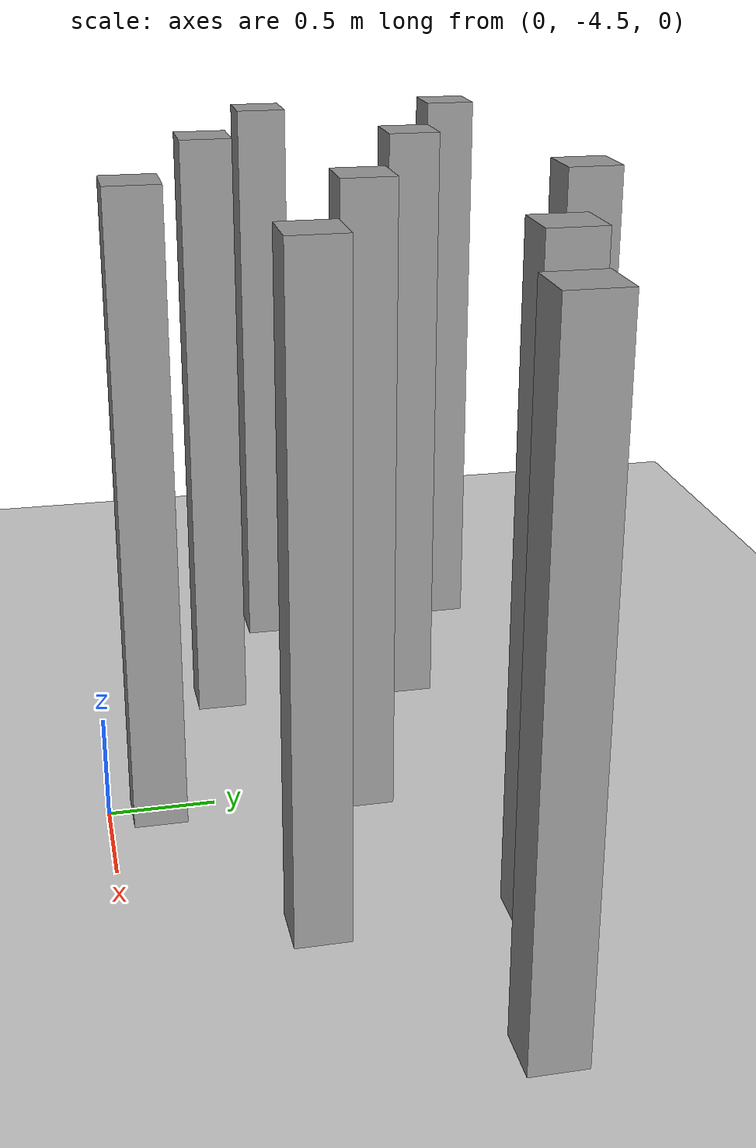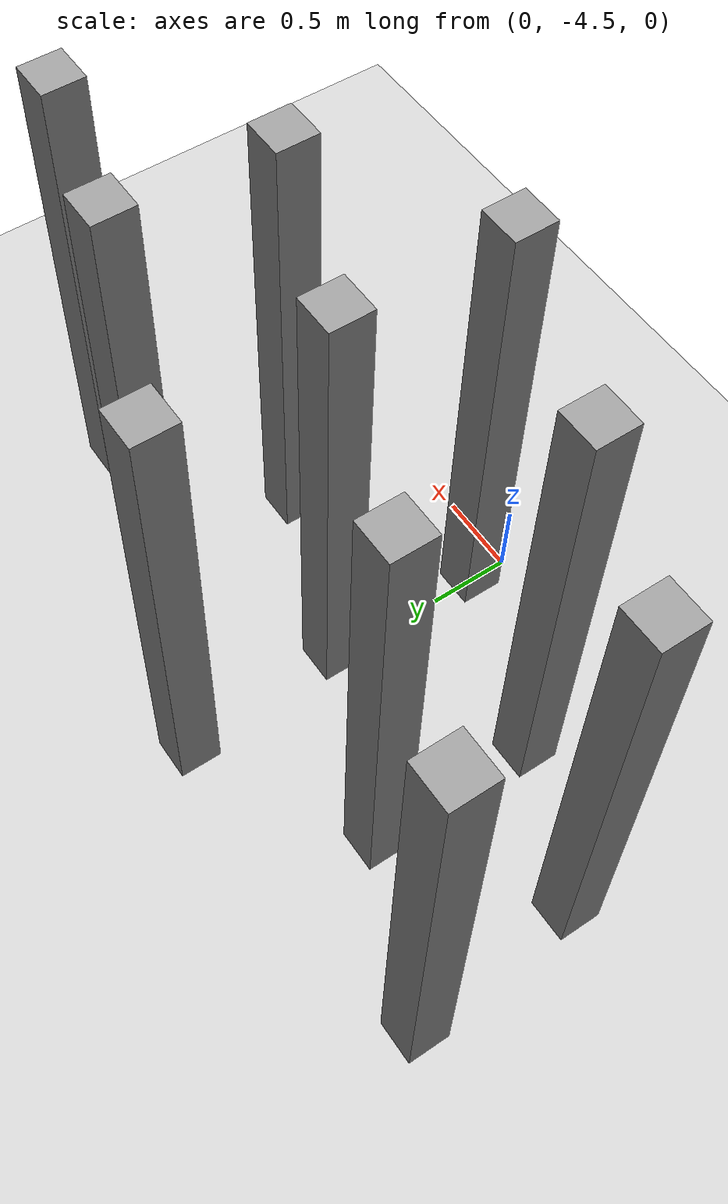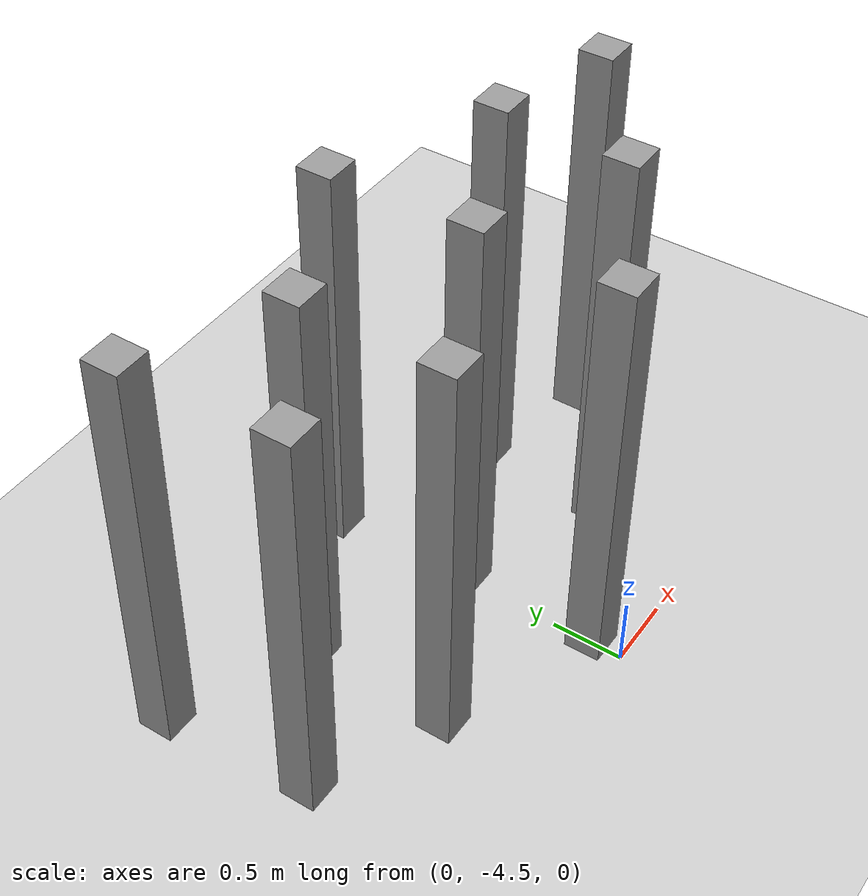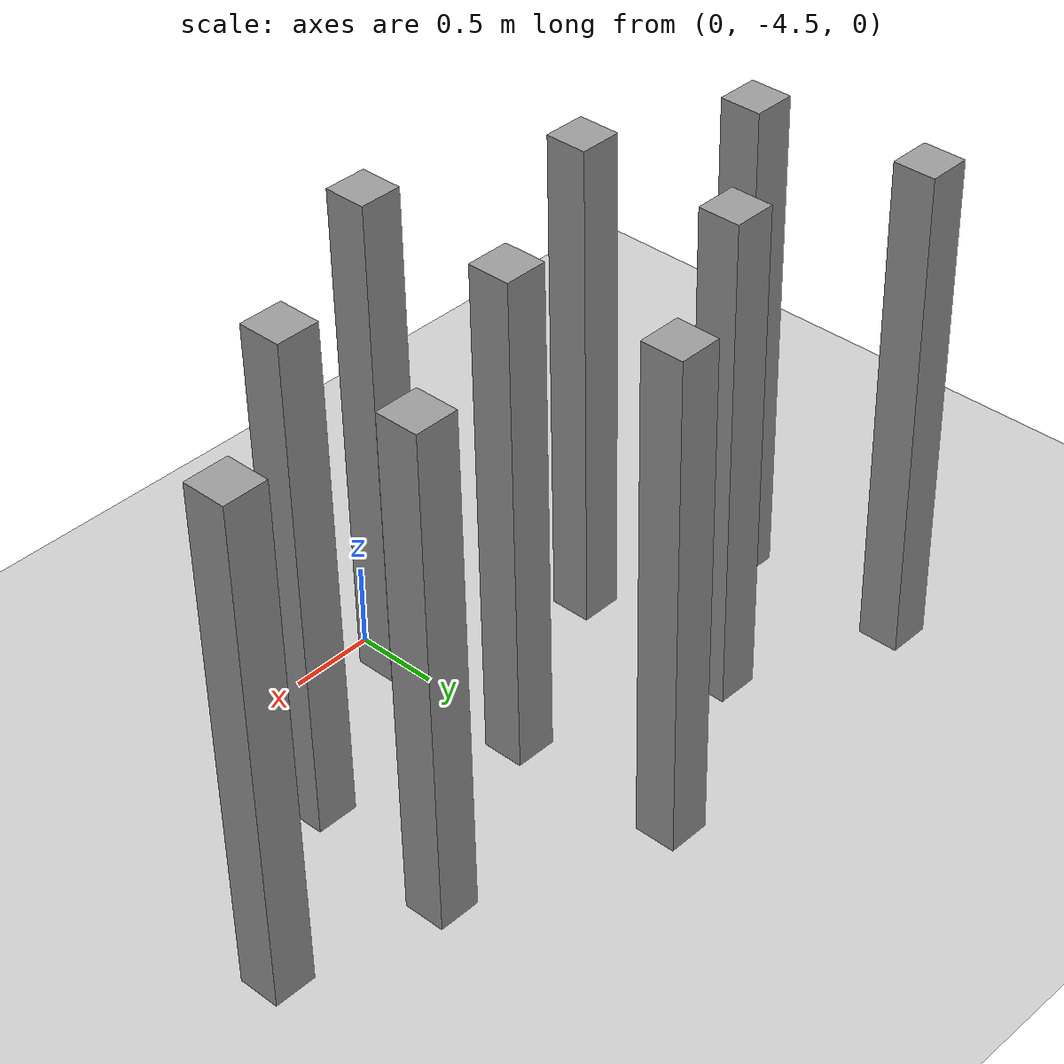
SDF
<sdf version="1.6">
 <world name="default">
  <model name="ground_plane">
   <static>1</static>
   <link name="link">
    <collision name="collision">
     <geometry><plane><normal>0 0 1</normal><size>100 100</size></plane></geometry>
     <surface><friction><ode><mu>100</mu><mu2>50</mu2></ode></friction></surface>
    </collision>
    <visual name="visual">
     <cast_shadows>0</cast_shadows>
     <geometry><plane><normal>0 0 1</normal><size>100 100</size></plane></geometry>
     <material>
      <script><uri>file://media/materials/scripts/gazebo.material</uri><name>Gazebo/Grey</name></script>
     </material>
    </visual>
   </link>
  </model>
  <model name="box_2_1">
   <link name="link">
    <pose>0 0 1 0 -0 0</pose>
    <inertial>
     <mass>1</mass>
     <inertia><ixx>5.16667</ixx><ixy>0</ixy><ixz>0</ixz><iyy>5.16667</iyy><iyz>0</iyz><izz>5.16667</izz></inertia>
     <pose>0 0 1 0 -0 0</pose>
    </inertial>
    <visual name="ModelPreview_4::link::visual_1">
     <geometry><box><size>0.25 0.25 3</size></box></geometry>
     <material>
      <script><name>Gazebo/Grey</name><uri>file://media/materials/scripts/gazebo.material</uri></script>
      <ambient>0.3 0.3 0.3 1</ambient>
      <diffuse>0.7 0.7 0.7 1</diffuse>
      <specular>0.01 0.01 0.01 1</specular>
      <emissive>0 0 0 1</emissive>
      <shader type="vertex"><normal_map>__default__</normal_map></shader>
     </material>
    </visual>
    <visual name="visual">
     <geometry><box><size>0.25 0.25 3</size></box></geometry>
     <material>
      <script><name>Gazebo/Grey</name><uri>file://media/materials/scripts/gazebo.material</uri></script>
      <ambient>0.3 0.3 0.3 1</ambient>
      <diffuse>0.7 0.7 0.7 1</diffuse>
      <specular>0.01 0.01 0.01 1</specular>
      <emissive>0 0 0 1</emissive>
      <shader type="vertex"><normal_map>__default__</normal_map></shader>
     </material>
    </visual>
    <collision name="collision">
     <geometry><box><size>0.25 0.25 3</size></box></geometry>
     <surface>
      <friction>
       <ode><mu>1</mu><mu2>1</mu2><fdir1>0 0 0</fdir1><slip1>0</slip1><slip2>0</slip2></ode>
       <torsional>
        <coefficient>1</coefficient>
        <patch_radius>0</patch_radius>
        <surface_radius>0</surface_radius>
        <use_patch_radius>1</use_patch_radius>
        <ode><slip>0</slip></ode>
       </torsional>
      </friction>
      <bounce><restitution_coefficient>0</restitution_coefficient><threshold>1e+06</threshold></bounce>
      <contact>
       <collide_without_contact>0</collide_without_contact>
       <collide_without_contact_bitmask>1</collide_without_contact_bitmask>
       <collide_bitmask>1</collide_bitmask>
       <ode>
        <soft_cfm>0</soft_cfm>
        <soft_erp>0.2</soft_erp>
        <kp>1e+13</kp>
        <kd>1</kd>
        <max_vel>0.01</max_vel>
        <min_depth>0</min_depth>
       </ode>
       <bullet>
        <split_impulse>1</split_impulse>
        <split_impulse_penetration_threshold>-0.01</split_impulse_penetration_threshold>
        <soft_cfm>0</soft_cfm>
        <soft_erp>0.2</soft_erp>
        <kp>1e+13</kp>
        <kd>1</kd>
       </bullet>
      </contact>
     </surface>
    </collision>
   </link>
   <static>0</static>
   <pose>-0.019064 -2.27137 0.500001 -4e-06 -2e-06 -0.000161</pose>
  </model>
  <model name="box_2_2">
   <link name="link">
    <pose>0 0 1 0 -0 0</pose>
    <inertial>
     <mass>1</mass>
     <inertia><ixx>5.16667</ixx><ixy>0</ixy><ixz>0</ixz><iyy>5.16667</iyy><iyz>0</iyz><izz>5.16667</izz></inertia>
     <pose>0 0 1 0 -0 0</pose>
    </inertial>
    <visual name="ModelPreview_4::link::visual_1">
     <geometry><box><size>0.25 0.25 3</size></box></geometry>
     <material>
      <script><name>Gazebo/Grey</name><uri>file://media/materials/scripts/gazebo.material</uri></script>
      <ambient>0.3 0.3 0.3 1</ambient>
      <diffuse>0.7 0.7 0.7 1</diffuse>
      <specular>0.01 0.01 0.01 1</specular>
      <emissive>0 0 0 1</emissive>
      <shader type="vertex"><normal_map>__default__</normal_map></shader>
     </material>
    </visual>
    <visual name="visual">
     <geometry><box><size>0.25 0.25 3</size></box></geometry>
     <material>
      <script><name>Gazebo/Grey</name><uri>file://media/materials/scripts/gazebo.material</uri></script>
      <ambient>0.3 0.3 0.3 1</ambient>
      <diffuse>0.7 0.7 0.7 1</diffuse>
      <specular>0.01 0.01 0.01 1</specular>
      <emissive>0 0 0 1</emissive>
      <shader type="vertex"><normal_map>__default__</normal_map></shader>
     </material>
    </visual>
    <collision name="collision">
     <geometry><box><size>0.25 0.25 3</size></box></geometry>
     <surface>
      <friction>
       <ode><mu>1</mu><mu2>1</mu2><fdir1>0 0 0</fdir1><slip1>0</slip1><slip2>0</slip2></ode>
       <torsional>
        <coefficient>1</coefficient>
        <patch_radius>0</patch_radius>
        <surface_radius>0</surface_radius>
        <use_patch_radius>1</use_patch_radius>
        <ode><slip>0</slip></ode>
       </torsional>
      </friction>
      <bounce><restitution_coefficient>0</restitution_coefficient><threshold>1e+06</threshold></bounce>
      <contact>
       <collide_without_contact>0</collide_without_contact>
       <collide_without_contact_bitmask>1</collide_without_contact_bitmask>
       <collide_bitmask>1</collide_bitmask>
       <ode>
        <soft_cfm>0</soft_cfm>
        <soft_erp>0.2</soft_erp>
        <kp>1e+13</kp>
        <kd>1</kd>
        <max_vel>0.01</max_vel>
        <min_depth>0</min_depth>
       </ode>
       <bullet>
        <split_impulse>1</split_impulse>
        <split_impulse_penetration_threshold>-0.01</split_impulse_penetration_threshold>
        <soft_cfm>0</soft_cfm>
        <soft_erp>0.2</soft_erp>
        <kp>1e+13</kp>
        <kd>1</kd>
       </bullet>
      </contact>
     </surface>
    </collision>
   </link>
   <static>0</static>
   <pose>0.041525 -3.28341 0.5 0 -1e-06 -0.000116</pose>
  </model>
  <model name="box_2_3">
   <link name="link">
    <pose>0 0 1 0 -0 0</pose>
    <inertial>
     <mass>1</mass>
     <inertia><ixx>5.16667</ixx><ixy>0</ixy><ixz>0</ixz><iyy>5.16667</iyy><iyz>0</iyz><izz>5.16667</izz></inertia>
     <pose>0 0 1 0 -0 0</pose>
    </inertial>
    <visual name="ModelPreview_4::link::visual_1">
     <geometry><box><size>0.25 0.25 3</size></box></geometry>
     <material>
      <script><name>Gazebo/Grey</name><uri>file://media/materials/scripts/gazebo.material</uri></script>
      <ambient>0.3 0.3 0.3 1</ambient>
      <diffuse>0.7 0.7 0.7 1</diffuse>
      <specular>0.01 0.01 0.01 1</specular>
      <emissive>0 0 0 1</emissive>
      <shader type="vertex"><normal_map>__default__</normal_map></shader>
     </material>
    </visual>
    <visual name="visual">
     <geometry><box><size>0.25 0.25 3</size></box></geometry>
     <material>
      <script><name>Gazebo/Grey</name><uri>file://media/materials/scripts/gazebo.material</uri></script>
      <ambient>0.3 0.3 0.3 1</ambient>
      <diffuse>0.7 0.7 0.7 1</diffuse>
      <specular>0.01 0.01 0.01 1</specular>
      <emissive>0 0 0 1</emissive>
      <shader type="vertex"><normal_map>__default__</normal_map></shader>
     </material>
    </visual>
    <collision name="collision">
     <geometry><box><size>0.25 0.25 3</size></box></geometry>
     <surface>
      <friction>
       <ode><mu>1</mu><mu2>1</mu2><fdir1>0 0 0</fdir1><slip1>0</slip1><slip2>0</slip2></ode>
       <torsional>
        <coefficient>1</coefficient>
        <patch_radius>0</patch_radius>
        <surface_radius>0</surface_radius>
        <use_patch_radius>1</use_patch_radius>
        <ode><slip>0</slip></ode>
       </torsional>
      </friction>
      <bounce><restitution_coefficient>0</restitution_coefficient><threshold>1e+06</threshold></bounce>
      <contact>
       <collide_without_contact>0</collide_without_contact>
       <collide_without_contact_bitmask>1</collide_without_contact_bitmask>
       <collide_bitmask>1</collide_bitmask>
       <ode>
        <soft_cfm>0</soft_cfm>
        <soft_erp>0.2</soft_erp>
        <kp>1e+13</kp>
        <kd>1</kd>
        <max_vel>0.01</max_vel>
        <min_depth>0</min_depth>
       </ode>
       <bullet>
        <split_impulse>1</split_impulse>
        <split_impulse_penetration_threshold>-0.01</split_impulse_penetration_threshold>
        <soft_cfm>0</soft_cfm>
        <soft_erp>0.2</soft_erp>
        <kp>1e+13</kp>
        <kd>1</kd>
       </bullet>
      </contact>
     </surface>
    </collision>
   </link>
   <static>0</static>
   <pose>0.019903 -4.26621 0.5 -2e-06 -0 -8.3e-05</pose>
  </model>
  <model name="box_2_12">
   <link name="link">
    <pose>0 0 1 0 -0 0</pose>
    <inertial>
     <mass>1</mass>
     <inertia><ixx>5.16667</ixx><ixy>0</ixy><ixz>0</ixz><iyy>5.16667</iyy><iyz>0</iyz><izz>5.16667</izz></inertia>
     <pose>0 0 1 0 -0 0</pose>
    </inertial>
    <visual name="ModelPreview_4::link::visual_1">
     <geometry><box><size>0.25 0.25 3</size></box></geometry>
     <material>
      <script><name>Gazebo/Grey</name><uri>file://media/materials/scripts/gazebo.material</uri></script>
      <ambient>0.3 0.3 0.3 1</ambient>
      <diffuse>0.7 0.7 0.7 1</diffuse>
      <specular>0.01 0.01 0.01 1</specular>
      <emissive>0 0 0 1</emissive>
      <shader type="vertex"><normal_map>__default__</normal_map></shader>
     </material>
    </visual>
    <visual name="visual">
     <geometry><box><size>0.25 0.25 3</size></box></geometry>
     <material>
      <script><name>Gazebo/Grey</name><uri>file://media/materials/scripts/gazebo.material</uri></script>
      <ambient>0.3 0.3 0.3 1</ambient>
      <diffuse>0.7 0.7 0.7 1</diffuse>
      <specular>0.01 0.01 0.01 1</specular>
      <emissive>0 0 0 1</emissive>
      <shader type="vertex"><normal_map>__default__</normal_map></shader>
     </material>
    </visual>
    <collision name="collision">
     <geometry><box><size>0.25 0.25 3</size></box></geometry>
     <surface>
      <friction>
       <ode><mu>1</mu><mu2>1</mu2><fdir1>0 0 0</fdir1><slip1>0</slip1><slip2>0</slip2></ode>
       <torsional>
        <coefficient>1</coefficient>
        <patch_radius>0</patch_radius>
        <surface_radius>0</surface_radius>
        <use_patch_radius>1</use_patch_radius>
        <ode><slip>0</slip></ode>
       </torsional>
      </friction>
      <bounce><restitution_coefficient>0</restitution_coefficient><threshold>1e+06</threshold></bounce>
      <contact>
       <collide_without_contact>0</collide_without_contact>
       <collide_without_contact_bitmask>1</collide_without_contact_bitmask>
       <collide_bitmask>1</collide_bitmask>
       <ode>
        <soft_cfm>0</soft_cfm>
        <soft_erp>0.2</soft_erp>
        <kp>1e+13</kp>
        <kd>1</kd>
        <max_vel>0.01</max_vel>
        <min_depth>0</min_depth>
       </ode>
       <bullet>
        <split_impulse>1</split_impulse>
        <split_impulse_penetration_threshold>-0.01</split_impulse_penetration_threshold>
        <soft_cfm>0</soft_cfm>
        <soft_erp>0.2</soft_erp>
        <kp>1e+13</kp>
        <kd>1</kd>
       </bullet>
      </contact>
     </surface>
    </collision>
   </link>
   <static>0</static>
   <pose>1.08723 -3.69589 0.5 0 0 -8.7e-05</pose>
  </model>
  <model name="box_2_13">
   <link name="link">
    <pose>0 0 1 0 -0 0</pose>
    <inertial>
     <mass>1</mass>
     <inertia><ixx>5.16667</ixx><ixy>0</ixy><ixz>0</ixz><iyy>5.16667</iyy><iyz>0</iyz><izz>5.16667</izz></inertia>
     <pose>0 0 1 0 -0 0</pose>
    </inertial>
    <visual name="ModelPreview_4::link::visual_1">
     <geometry><box><size>0.25 0.25 3</size></box></geometry>
     <material>
      <script><name>Gazebo/Grey</name><uri>file://media/materials/scripts/gazebo.material</uri></script>
      <ambient>0.3 0.3 0.3 1</ambient>
      <diffuse>0.7 0.7 0.7 1</diffuse>
      <specular>0.01 0.01 0.01 1</specular>
      <emissive>0 0 0 1</emissive>
      <shader type="vertex"><normal_map>__default__</normal_map></shader>
     </material>
    </visual>
    <visual name="visual">
     <geometry><box><size>0.25 0.25 3</size></box></geometry>
     <material>
      <script><name>Gazebo/Grey</name><uri>file://media/materials/scripts/gazebo.material</uri></script>
      <ambient>0.3 0.3 0.3 1</ambient>
      <diffuse>0.7 0.7 0.7 1</diffuse>
      <specular>0.01 0.01 0.01 1</specular>
      <emissive>0 0 0 1</emissive>
      <shader type="vertex"><normal_map>__default__</normal_map></shader>
     </material>
    </visual>
    <collision name="collision">
     <geometry><box><size>0.25 0.25 3</size></box></geometry>
     <surface>
      <friction>
       <ode><mu>1</mu><mu2>1</mu2><fdir1>0 0 0</fdir1><slip1>0</slip1><slip2>0</slip2></ode>
       <torsional>
        <coefficient>1</coefficient>
        <patch_radius>0</patch_radius>
        <surface_radius>0</surface_radius>
        <use_patch_radius>1</use_patch_radius>
        <ode><slip>0</slip></ode>
       </torsional>
      </friction>
      <bounce><restitution_coefficient>0</restitution_coefficient><threshold>1e+06</threshold></bounce>
      <contact>
       <collide_without_contact>0</collide_without_contact>
       <collide_without_contact_bitmask>1</collide_without_contact_bitmask>
       <collide_bitmask>1</collide_bitmask>
       <ode>
        <soft_cfm>0</soft_cfm>
        <soft_erp>0.2</soft_erp>
        <kp>1e+13</kp>
        <kd>1</kd>
        <max_vel>0.01</max_vel>
        <min_depth>0</min_depth>
       </ode>
       <bullet>
        <split_impulse>1</split_impulse>
        <split_impulse_penetration_threshold>-0.01</split_impulse_penetration_threshold>
        <soft_cfm>0</soft_cfm>
        <soft_erp>0.2</soft_erp>
        <kp>1e+13</kp>
        <kd>1</kd>
       </bullet>
      </contact>
     </surface>
    </collision>
   </link>
   <static>0</static>
   <pose>1.15505 -2.75172 0.500002 -1.5e-05 0 -0.000181</pose>
  </model>
  <model name="box_2_26">
   <link name="link">
    <pose>0 0 1 0 -0 0</pose>
    <inertial>
     <mass>1</mass>
     <inertia><ixx>5.16667</ixx><ixy>0</ixy><ixz>0</ixz><iyy>5.16667</iyy><iyz>0</iyz><izz>5.16667</izz></inertia>
     <pose>0 0 1 0 -0 0</pose>
    </inertial>
    <visual name="ModelPreview_4::link::visual_1">
     <geometry><box><size>0.25 0.25 3</size></box></geometry>
     <material>
      <script><name>Gazebo/Grey</name><uri>file://media/materials/scripts/gazebo.material</uri></script>
      <ambient>0.3 0.3 0.3 1</ambient>
      <diffuse>0.7 0.7 0.7 1</diffuse>
      <specular>0.01 0.01 0.01 1</specular>
      <emissive>0 0 0 1</emissive>
      <shader type="vertex"><normal_map>__default__</normal_map></shader>
     </material>
    </visual>
    <visual name="visual">
     <geometry><box><size>0.25 0.25 3</size></box></geometry>
     <material>
      <script><name>Gazebo/Grey</name><uri>file://media/materials/scripts/gazebo.material</uri></script>
      <ambient>0.3 0.3 0.3 1</ambient>
      <diffuse>0.7 0.7 0.7 1</diffuse>
      <specular>0.01 0.01 0.01 1</specular>
      <emissive>0 0 0 1</emissive>
      <shader type="vertex"><normal_map>__default__</normal_map></shader>
     </material>
    </visual>
    <collision name="collision">
     <geometry><box><size>0.25 0.25 3</size></box></geometry>
     <surface>
      <friction>
       <ode><mu>1</mu><mu2>1</mu2><fdir1>0 0 0</fdir1><slip1>0</slip1><slip2>0</slip2></ode>
       <torsional>
        <coefficient>1</coefficient>
        <patch_radius>0</patch_radius>
        <surface_radius>0</surface_radius>
        <use_patch_radius>1</use_patch_radius>
        <ode><slip>0</slip></ode>
       </torsional>
      </friction>
      <bounce><restitution_coefficient>0</restitution_coefficient><threshold>1e+06</threshold></bounce>
      <contact>
       <collide_without_contact>0</collide_without_contact>
       <collide_without_contact_bitmask>1</collide_without_contact_bitmask>
       <collide_bitmask>1</collide_bitmask>
       <ode>
        <soft_cfm>0</soft_cfm>
        <soft_erp>0.2</soft_erp>
        <kp>1e+13</kp>
        <kd>1</kd>
        <max_vel>0.01</max_vel>
        <min_depth>0</min_depth>
       </ode>
       <bullet>
        <split_impulse>1</split_impulse>
        <split_impulse_penetration_threshold>-0.01</split_impulse_penetration_threshold>
        <soft_cfm>0</soft_cfm>
        <soft_erp>0.2</soft_erp>
        <kp>1e+13</kp>
        <kd>1</kd>
       </bullet>
      </contact>
     </surface>
    </collision>
   </link>
   <static>0</static>
   <pose>-1.05883 -2.82292 0.5 0 0 -0.000137</pose>
  </model>
  <model name="box_2_27">
   <link name="link">
    <pose>0 0 1 0 -0 0</pose>
    <inertial>
     <mass>1</mass>
     <inertia><ixx>5.16667</ixx><ixy>0</ixy><ixz>0</ixz><iyy>5.16667</iyy><iyz>0</iyz><izz>5.16667</izz></inertia>
     <pose>0 0 1 0 -0 0</pose>
    </inertial>
    <visual name="ModelPreview_4::link::visual_1">
     <geometry><box><size>0.25 0.25 3</size></box></geometry>
     <material>
      <script><name>Gazebo/Grey</name><uri>file://media/materials/scripts/gazebo.material</uri></script>
      <ambient>0.3 0.3 0.3 1</ambient>
      <diffuse>0.7 0.7 0.7 1</diffuse>
      <specular>0.01 0.01 0.01 1</specular>
      <emissive>0 0 0 1</emissive>
      <shader type="vertex"><normal_map>__default__</normal_map></shader>
     </material>
    </visual>
    <visual name="visual">
     <geometry><box><size>0.25 0.25 3</size></box></geometry>
     <material>
      <script><name>Gazebo/Grey</name><uri>file://media/materials/scripts/gazebo.material</uri></script>
      <ambient>0.3 0.3 0.3 1</ambient>
      <diffuse>0.7 0.7 0.7 1</diffuse>
      <specular>0.01 0.01 0.01 1</specular>
      <emissive>0 0 0 1</emissive>
      <shader type="vertex"><normal_map>__default__</normal_map></shader>
     </material>
    </visual>
    <collision name="collision">
     <geometry><box><size>0.25 0.25 3</size></box></geometry>
     <surface>
      <friction>
       <ode><mu>1</mu><mu2>1</mu2><fdir1>0 0 0</fdir1><slip1>0</slip1><slip2>0</slip2></ode>
       <torsional>
        <coefficient>1</coefficient>
        <patch_radius>0</patch_radius>
        <surface_radius>0</surface_radius>
        <use_patch_radius>1</use_patch_radius>
        <ode><slip>0</slip></ode>
       </torsional>
      </friction>
      <bounce><restitution_coefficient>0</restitution_coefficient><threshold>1e+06</threshold></bounce>
      <contact>
       <collide_without_contact>0</collide_without_contact>
       <collide_without_contact_bitmask>1</collide_without_contact_bitmask>
       <collide_bitmask>1</collide_bitmask>
       <ode>
        <soft_cfm>0</soft_cfm>
        <soft_erp>0.2</soft_erp>
        <kp>1e+13</kp>
        <kd>1</kd>
        <max_vel>0.01</max_vel>
        <min_depth>0</min_depth>
       </ode>
       <bullet>
        <split_impulse>1</split_impulse>
        <split_impulse_penetration_threshold>-0.01</split_impulse_penetration_threshold>
        <soft_cfm>0</soft_cfm>
        <soft_erp>0.2</soft_erp>
        <kp>1e+13</kp>
        <kd>1</kd>
       </bullet>
      </contact>
     </surface>
    </collision>
   </link>
   <static>0</static>
   <pose>-1.07414 -3.83131 0.5 -3e-06 -0 -0.0002</pose>
  </model>
  <model name="box_2_33">
   <link name="link">
    <pose>0 0 1 0 -0 0</pose>
    <inertial>
     <mass>1</mass>
     <inertia><ixx>5.16667</ixx><ixy>0</ixy><ixz>0</ixz><iyy>5.16667</iyy><iyz>0</iyz><izz>5.16667</izz></inertia>
     <pose>0 0 1 0 -0 0</pose>
    </inertial>
    <visual name="ModelPreview_4::link::visual_1">
     <geometry><box><size>0.25 0.25 3</size></box></geometry>
     <material>
      <script><name>Gazebo/Grey</name><uri>file://media/materials/scripts/gazebo.material</uri></script>
      <ambient>0.3 0.3 0.3 1</ambient>
      <diffuse>0.7 0.7 0.7 1</diffuse>
      <specular>0.01 0.01 0.01 1</specular>
      <emissive>0 0 0 1</emissive>
      <shader type="vertex"><normal_map>__default__</normal_map></shader>
     </material>
    </visual>
    <visual name="visual">
     <geometry><box><size>0.25 0.25 3</size></box></geometry>
     <material>
      <script><name>Gazebo/Grey</name><uri>file://media/materials/scripts/gazebo.material</uri></script>
      <ambient>0.3 0.3 0.3 1</ambient>
      <diffuse>0.7 0.7 0.7 1</diffuse>
      <specular>0.01 0.01 0.01 1</specular>
      <emissive>0 0 0 1</emissive>
      <shader type="vertex"><normal_map>__default__</normal_map></shader>
     </material>
    </visual>
    <collision name="collision">
     <geometry><box><size>0.25 0.25 3</size></box></geometry>
     <surface>
      <friction>
       <ode><mu>1</mu><mu2>1</mu2><fdir1>0 0 0</fdir1><slip1>0</slip1><slip2>0</slip2></ode>
       <torsional>
        <coefficient>1</coefficient>
        <patch_radius>0</patch_radius>
        <surface_radius>0</surface_radius>
        <use_patch_radius>1</use_patch_radius>
        <ode><slip>0</slip></ode>
       </torsional>
      </friction>
      <bounce><restitution_coefficient>0</restitution_coefficient><threshold>1e+06</threshold></bounce>
      <contact>
       <collide_without_contact>0</collide_without_contact>
       <collide_without_contact_bitmask>1</collide_without_contact_bitmask>
       <collide_bitmask>1</collide_bitmask>
       <ode>
        <soft_cfm>0</soft_cfm>
        <soft_erp>0.2</soft_erp>
        <kp>1e+13</kp>
        <kd>1</kd>
        <max_vel>0.01</max_vel>
        <min_depth>0</min_depth>
       </ode>
       <bullet>
        <split_impulse>1</split_impulse>
        <split_impulse_penetration_threshold>-0.01</split_impulse_penetration_threshold>
        <soft_cfm>0</soft_cfm>
        <soft_erp>0.2</soft_erp>
        <kp>1e+13</kp>
        <kd>1</kd>
       </bullet>
      </contact>
     </surface>
    </collision>
   </link>
   <static>0</static>
   <pose>-2.02342 -2.39234 0.500001 -1e-06 6e-06 -0.000157</pose>
  </model>
  <model name="box_2_34">
   <link name="link">
    <pose>0 0 1 0 -0 0</pose>
    <inertial>
     <mass>1</mass>
     <inertia><ixx>5.16667</ixx><ixy>0</ixy><ixz>0</ixz><iyy>5.16667</iyy><iyz>0</iyz><izz>5.16667</izz></inertia>
     <pose>0 0 1 0 -0 0</pose>
    </inertial>
    <visual name="ModelPreview_4::link::visual_1">
     <geometry><box><size>0.25 0.25 3</size></box></geometry>
     <material>
      <script><name>Gazebo/Grey</name><uri>file://media/materials/scripts/gazebo.material</uri></script>
      <ambient>0.3 0.3 0.3 1</ambient>
      <diffuse>0.7 0.7 0.7 1</diffuse>
      <specular>0.01 0.01 0.01 1</specular>
      <emissive>0 0 0 1</emissive>
      <shader type="vertex"><normal_map>__default__</normal_map></shader>
     </material>
    </visual>
    <visual name="visual">
     <geometry><box><size>0.25 0.25 3</size></box></geometry>
     <material>
      <script><name>Gazebo/Grey</name><uri>file://media/materials/scripts/gazebo.material</uri></script>
      <ambient>0.3 0.3 0.3 1</ambient>
      <diffuse>0.7 0.7 0.7 1</diffuse>
      <specular>0.01 0.01 0.01 1</specular>
      <emissive>0 0 0 1</emissive>
      <shader type="vertex"><normal_map>__default__</normal_map></shader>
     </material>
    </visual>
    <collision name="collision">
     <geometry><box><size>0.25 0.25 3</size></box></geometry>
     <surface>
      <friction>
       <ode><mu>1</mu><mu2>1</mu2><fdir1>0 0 0</fdir1><slip1>0</slip1><slip2>0</slip2></ode>
       <torsional>
        <coefficient>1</coefficient>
        <patch_radius>0</patch_radius>
        <surface_radius>0</surface_radius>
        <use_patch_radius>1</use_patch_radius>
        <ode><slip>0</slip></ode>
       </torsional>
      </friction>
      <bounce><restitution_coefficient>0</restitution_coefficient><threshold>1e+06</threshold></bounce>
      <contact>
       <collide_without_contact>0</collide_without_contact>
       <collide_without_contact_bitmask>1</collide_without_contact_bitmask>
       <collide_bitmask>1</collide_bitmask>
       <ode>
        <soft_cfm>0</soft_cfm>
        <soft_erp>0.2</soft_erp>
        <kp>1e+13</kp>
        <kd>1</kd>
        <max_vel>0.01</max_vel>
        <min_depth>0</min_depth>
       </ode>
       <bullet>
        <split_impulse>1</split_impulse>
        <split_impulse_penetration_threshold>-0.01</split_impulse_penetration_threshold>
        <soft_cfm>0</soft_cfm>
        <soft_erp>0.2</soft_erp>
        <kp>1e+13</kp>
        <kd>1</kd>
       </bullet>
      </contact>
     </surface>
    </collision>
   </link>
   <static>0</static>
   <pose>-1.94416 -3.43269 0.500002 2e-06 1.3e-05 -0.00012</pose>
  </model>
  <model name="box_2_35">
   <link name="link">
    <pose>0 0 1 0 -0 0</pose>
    <inertial>
     <mass>1</mass>
     <inertia><ixx>5.16667</ixx><ixy>0</ixy><ixz>0</ixz><iyy>5.16667</iyy><iyz>0</iyz><izz>5.16667</izz></inertia>
     <pose>0 0 1 0 -0 0</pose>
    </inertial>
    <visual name="ModelPreview_4::link::visual_1">
     <geometry><box><size>0.25 0.25 3</size></box></geometry>
     <material>
      <script><name>Gazebo/Grey</name><uri>file://media/materials/scripts/gazebo.material</uri></script>
      <ambient>0.3 0.3 0.3 1</ambient>
      <diffuse>0.7 0.7 0.7 1</diffuse>
      <specular>0.01 0.01 0.01 1</specular>
      <emissive>0 0 0 1</emissive>
      <shader type="vertex"><normal_map>__default__</normal_map></shader>
     </material>
    </visual>
    <visual name="visual">
     <geometry><box><size>0.25 0.25 3</size></box></geometry>
     <material>
      <script><name>Gazebo/Grey</name><uri>file://media/materials/scripts/gazebo.material</uri></script>
      <ambient>0.3 0.3 0.3 1</ambient>
      <diffuse>0.7 0.7 0.7 1</diffuse>
      <specular>0.01 0.01 0.01 1</specular>
      <emissive>0 0 0 1</emissive>
      <shader type="vertex"><normal_map>__default__</normal_map></shader>
     </material>
    </visual>
    <collision name="collision">
     <geometry><box><size>0.25 0.25 3</size></box></geometry>
     <surface>
      <friction>
       <ode><mu>1</mu><mu2>1</mu2><fdir1>0 0 0</fdir1><slip1>0</slip1><slip2>0</slip2></ode>
       <torsional>
        <coefficient>1</coefficient>
        <patch_radius>0</patch_radius>
        <surface_radius>0</surface_radius>
        <use_patch_radius>1</use_patch_radius>
        <ode><slip>0</slip></ode>
       </torsional>
      </friction>
      <bounce><restitution_coefficient>0</restitution_coefficient><threshold>1e+06</threshold></bounce>
      <contact>
       <collide_without_contact>0</collide_without_contact>
       <collide_without_contact_bitmask>1</collide_without_contact_bitmask>
       <collide_bitmask>1</collide_bitmask>
       <ode>
        <soft_cfm>0</soft_cfm>
        <soft_erp>0.2</soft_erp>
        <kp>1e+13</kp>
        <kd>1</kd>
        <max_vel>0.01</max_vel>
        <min_depth>0</min_depth>
       </ode>
       <bullet>
        <split_impulse>1</split_impulse>
        <split_impulse_penetration_threshold>-0.01</split_impulse_penetration_threshold>
        <soft_cfm>0</soft_cfm>
        <soft_erp>0.2</soft_erp>
        <kp>1e+13</kp>
        <kd>1</kd>
       </bullet>
      </contact>
     </surface>
    </collision>
   </link>
   <static>0</static>
   <pose>2.04008 -2.98284 0.500004 2e-06 2.7e-05 -0.000169</pose>
  </model>
 </world>
</sdf>
